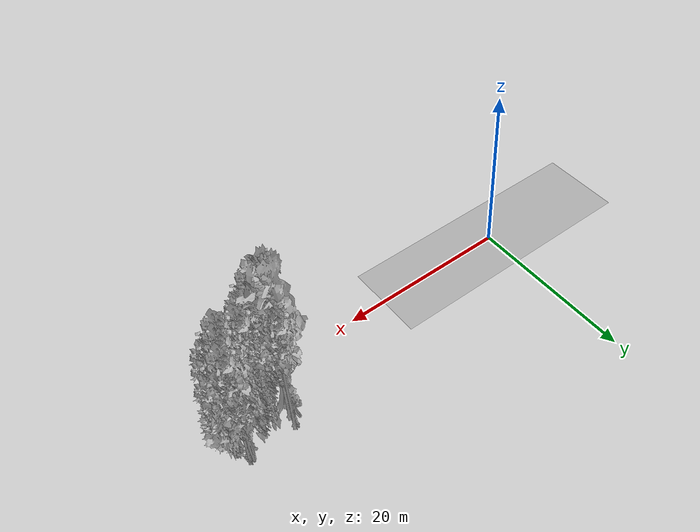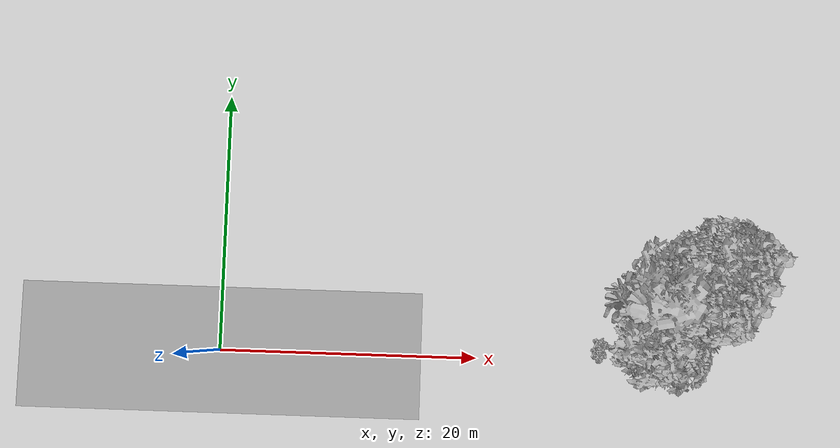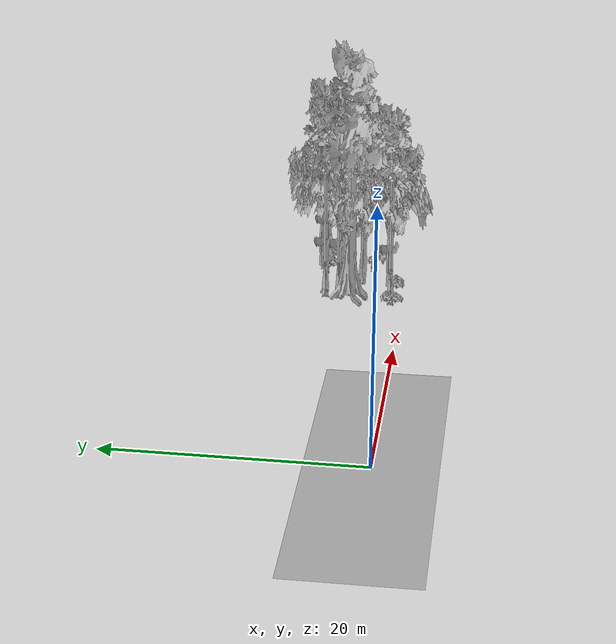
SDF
<sdf version="1.7">
 <world name="default">
  <model name="ground_plane">
   <static>1</static>
   <link name="link">
    <collision name="collision">
     <geometry><plane><normal>0 0 1</normal><size>100 100</size></plane></geometry>
     <surface><contact><ode><min_depth>0.01</min_depth><max_vel>0</max_vel></ode></contact></surface>
    </collision>
    <visual name="grass">
     <cast_shadows>0</cast_shadows>
     <geometry>
      <mesh>
       <scale>0.5814285714285714 0.18142857142857144 0.1</scale>
       <uri>file://grass_plane/meshes/grass_plane.dae</uri>
      </mesh>
     </geometry>
    </visual>
   </link>
  </model>
  <model name="Tree 175">
   <static>1</static>
   <pose>31.618759732992004 5.647801892518292 0 1.57079 -0 0</pose>
   <link name="link">
    <collision name="collision">
     <geometry><mesh><scale>3.5 5 3.5</scale><uri>model://tree_9/meshes/tree_9.obj</uri></mesh></geometry>
    </collision>
    <visual name="visual">
     <geometry><mesh><scale>3.5 5 3.5</scale><uri>model://tree_9/meshes/tree_9.obj</uri></mesh></geometry>
    </visual>
   </link>
  </model>
  <model name="Tree 182">
   <static>1</static>
   <pose>33.18306166454015 3.6739249281176996 0 1.57079 -0 0</pose>
   <link name="link">
    <collision name="collision">
     <geometry><mesh><scale>3.5 5 3.5</scale><uri>model://tree_2/meshes/tree_2.obj</uri></mesh></geometry>
    </collision>
    <visual name="visual">
     <geometry><mesh><scale>3.5 5 3.5</scale><uri>model://tree_2/meshes/tree_2.obj</uri></mesh></geometry>
    </visual>
   </link>
  </model>
  <model name="Tree 190">
   <static>1</static>
   <pose>31.79668107612474 6.836369290769582 0 1.57079 -0 0</pose>
   <link name="link">
    <collision name="collision">
     <geometry><mesh><scale>3.5 5 3.5</scale><uri>model://tree_9/meshes/tree_9.obj</uri></mesh></geometry>
    </collision>
    <visual name="visual">
     <geometry><mesh><scale>3.5 5 3.5</scale><uri>model://tree_9/meshes/tree_9.obj</uri></mesh></geometry>
    </visual>
   </link>
  </model>
  <model name="Tree 227">
   <static>1</static>
   <pose>37.17132665054946 7.369085561247843 0 1.57079 -0 0</pose>
   <link name="link">
    <collision name="collision">
     <geometry><mesh><scale>3.5 5 3.5</scale><uri>model://tree_9/meshes/tree_9.obj</uri></mesh></geometry>
    </collision>
    <visual name="visual">
     <geometry><mesh><scale>3.5 5 3.5</scale><uri>model://tree_9/meshes/tree_9.obj</uri></mesh></geometry>
    </visual>
   </link>
  </model>
  <model name="Tree 228">
   <static>1</static>
   <pose>34.125454326950404 4.593254265939439 0 1.57079 -0 0</pose>
   <link name="link">
    <collision name="collision">
     <geometry><mesh><scale>3.5 5 3.5</scale><uri>model://tree_9/meshes/tree_9.obj</uri></mesh></geometry>
    </collision>
    <visual name="visual">
     <geometry><mesh><scale>3.5 5 3.5</scale><uri>model://tree_9/meshes/tree_9.obj</uri></mesh></geometry>
    </visual>
   </link>
  </model>
  <model name="Tree 259">
   <static>1</static>
   <pose>36.870716037272786 7.704359881895467 0 1.57079 -0 0</pose>
   <link name="link">
    <collision name="collision">
     <geometry><mesh><scale>3.5 5 3.5</scale><uri>model://tree_2/meshes/tree_2.obj</uri></mesh></geometry>
    </collision>
    <visual name="visual">
     <geometry><mesh><scale>3.5 5 3.5</scale><uri>model://tree_2/meshes/tree_2.obj</uri></mesh></geometry>
    </visual>
   </link>
  </model>
  <model name="Tree 261">
   <static>1</static>
   <pose>36.30689821481485 5.895072833381711 0 1.57079 -0 0</pose>
   <link name="link">
    <collision name="collision">
     <geometry><mesh><scale>3.5 5 3.5</scale><uri>model://tree_2/meshes/tree_2.obj</uri></mesh></geometry>
    </collision>
    <visual name="visual">
     <geometry><mesh><scale>3.5 5 3.5</scale><uri>model://tree_2/meshes/tree_2.obj</uri></mesh></geometry>
    </visual>
   </link>
  </model>
  <model name="Tree 292">
   <static>1</static>
   <pose>32.9292463511638 1.4296594273074668 0 1.57079 -0 0</pose>
   <link name="link">
    <collision name="collision">
     <geometry><mesh><scale>3.5 5 3.5</scale><uri>model://tree_2/meshes/tree_2.obj</uri></mesh></geometry>
    </collision>
    <visual name="visual">
     <geometry><mesh><scale>3.5 5 3.5</scale><uri>model://tree_2/meshes/tree_2.obj</uri></mesh></geometry>
    </visual>
   </link>
  </model>
  <model name="Tree 302">
   <static>1</static>
   <pose>36.382396890101646 5.397018256989149 0 1.57079 -0 0</pose>
   <link name="link">
    <collision name="collision">
     <geometry><mesh><scale>3.5 5 3.5</scale><uri>model://tree_9/meshes/tree_9.obj</uri></mesh></geometry>
    </collision>
    <visual name="visual">
     <geometry><mesh><scale>3.5 5 3.5</scale><uri>model://tree_9/meshes/tree_9.obj</uri></mesh></geometry>
    </visual>
   </link>
  </model>
  <model name="Tree 325">
   <static>1</static>
   <pose>36.66113186781493 7.095616586874627 0 1.57079 -0 0</pose>
   <link name="link">
    <collision name="collision">
     <geometry><mesh><scale>3.5 5 3.5</scale><uri>model://tree_2/meshes/tree_2.obj</uri></mesh></geometry>
    </collision>
    <visual name="visual">
     <geometry><mesh><scale>3.5 5 3.5</scale><uri>model://tree_2/meshes/tree_2.obj</uri></mesh></geometry>
    </visual>
   </link>
  </model>
  <model name="Tree 378">
   <static>1</static>
   <pose>30.8225458413021 1.1322860216537052 0 1.57079 -0 0</pose>
   <link name="link">
    <collision name="collision">
     <geometry><mesh><scale>3.5 5 3.5</scale><uri>model://tree_9/meshes/tree_9.obj</uri></mesh></geometry>
    </collision>
    <visual name="visual">
     <geometry><mesh><scale>3.5 5 3.5</scale><uri>model://tree_9/meshes/tree_9.obj</uri></mesh></geometry>
    </visual>
   </link>
  </model>
  <model name="Tree 386">
   <static>1</static>
   <pose>35.7301739585959 3.983721117975538 0 1.57079 -0 0</pose>
   <link name="link">
    <collision name="collision">
     <geometry><mesh><scale>3.5 5 3.5</scale><uri>model://tree_9/meshes/tree_9.obj</uri></mesh></geometry>
    </collision>
    <visual name="visual">
     <geometry><mesh><scale>3.5 5 3.5</scale><uri>model://tree_9/meshes/tree_9.obj</uri></mesh></geometry>
    </visual>
   </link>
  </model>
  <model name="Tree 405">
   <static>1</static>
   <pose>31.06436439699921 4.690933077250477 0 1.57079 -0 0</pose>
   <link name="link">
    <collision name="collision">
     <geometry><mesh><scale>3.5 5 3.5</scale><uri>model://tree_4/meshes/tree_4.obj</uri></mesh></geometry>
    </collision>
    <visual name="visual">
     <geometry><mesh><scale>3.5 5 3.5</scale><uri>model://tree_4/meshes/tree_4.obj</uri></mesh></geometry>
    </visual>
   </link>
  </model>
  <model name="Bush 33">
   <static>1</static>
   <pose>37.10644346341742 7.117557331291735 0 1.57079 -0 0</pose>
   <link name="link">
    <collision name="collision">
     <geometry><mesh><scale>2 2 2</scale><uri>model://bush_2/meshes/bush_2.obj</uri></mesh></geometry>
     <surface><contact><collide_without_contact>false</collide_without_contact></contact></surface>
    </collision>
    <visual name="visual">
     <geometry><mesh><scale>2 2 2</scale><uri>model://bush_2/meshes/bush_2.obj</uri></mesh></geometry>
    </visual>
   </link>
  </model>
  <model name="Bush 37">
   <static>1</static>
   <pose>33.3657108262001 0.8104425202608354 0 1.57079 -0 0</pose>
   <link name="link">
    <collision name="collision">
     <geometry><mesh><scale>2 2 2</scale><uri>model://bush_3/meshes/bush_3.obj</uri></mesh></geometry>
     <surface><contact><collide_without_contact>false</collide_without_contact></contact></surface>
    </collision>
    <visual name="visual">
     <geometry><mesh><scale>2 2 2</scale><uri>model://bush_3/meshes/bush_3.obj</uri></mesh></geometry>
    </visual>
   </link>
  </model>
  <model name="Bush 225">
   <static>1</static>
   <pose>32.64985940535165 0.7450199145901149 0 1.57079 -0 0</pose>
   <link name="link">
    <collision name="collision">
     <geometry><mesh><scale>2 2 2</scale><uri>model://bush_3/meshes/bush_3.obj</uri></mesh></geometry>
     <surface><contact><collide_without_contact>false</collide_without_contact></contact></surface>
    </collision>
    <visual name="visual">
     <geometry><mesh><scale>2 2 2</scale><uri>model://bush_3/meshes/bush_3.obj</uri></mesh></geometry>
    </visual>
   </link>
  </model>
  <model name="Bush 230">
   <static>1</static>
   <pose>36.810255019717886 6.664993600058281 0 1.57079 -0 0</pose>
   <link name="link">
    <collision name="collision">
     <geometry><mesh><scale>2 2 2</scale><uri>model://bush_3/meshes/bush_3.obj</uri></mesh></geometry>
     <surface><contact><collide_without_contact>false</collide_without_contact></contact></surface>
    </collision>
    <visual name="visual">
     <geometry><mesh><scale>2 2 2</scale><uri>model://bush_3/meshes/bush_3.obj</uri></mesh></geometry>
    </visual>
   </link>
  </model>
  <model name="Bush 251">
   <static>1</static>
   <pose>29.560292925711394 0.6060687693740512 0 1.57079 -0 0</pose>
   <link name="link">
    <collision name="collision">
     <geometry><mesh><scale>2 2 2</scale><uri>model://bush_3/meshes/bush_3.obj</uri></mesh></geometry>
     <surface><contact><collide_without_contact>false</collide_without_contact></contact></surface>
    </collision>
    <visual name="visual">
     <geometry><mesh><scale>2 2 2</scale><uri>model://bush_3/meshes/bush_3.obj</uri></mesh></geometry>
    </visual>
   </link>
  </model>
  <model name="Bush 300">
   <static>1</static>
   <pose>37.90684386969447 6.790513905103921 0 1.57079 -0 0</pose>
   <link name="link">
    <collision name="collision">
     <geometry><mesh><scale>2 2 2</scale><uri>model://bush_5/meshes/bush_5.obj</uri></mesh></geometry>
     <surface><contact><collide_without_contact>false</collide_without_contact></contact></surface>
    </collision>
    <visual name="visual">
     <geometry><mesh><scale>2 2 2</scale><uri>model://bush_5/meshes/bush_5.obj</uri></mesh></geometry>
    </visual>
   </link>
  </model>
  <model name="Bush 305">
   <static>1</static>
   <pose>29.726508179155715 1.3369857769152063 0 1.57079 -0 0</pose>
   <link name="link">
    <collision name="collision">
     <geometry><mesh><scale>2 2 2</scale><uri>model://bush_3/meshes/bush_3.obj</uri></mesh></geometry>
     <surface><contact><collide_without_contact>false</collide_without_contact></contact></surface>
    </collision>
    <visual name="visual">
     <geometry><mesh><scale>2 2 2</scale><uri>model://bush_3/meshes/bush_3.obj</uri></mesh></geometry>
    </visual>
   </link>
  </model>
  <model name="Bush 309">
   <static>1</static>
   <pose>37.98829173858782 2.330339257689822 0 1.57079 -0 0</pose>
   <link name="link">
    <collision name="collision">
     <geometry><mesh><scale>2 2 2</scale><uri>model://bush_1/meshes/bush_1.obj</uri></mesh></geometry>
     <surface><contact><collide_without_contact>false</collide_without_contact></contact></surface>
    </collision>
    <visual name="visual">
     <geometry><mesh><scale>2 2 2</scale><uri>model://bush_1/meshes/bush_1.obj</uri></mesh></geometry>
    </visual>
   </link>
  </model>
  <model name="Bush 318">
   <static>1</static>
   <pose>36.093658493213596 3.206402075287542 0 1.57079 -0 0</pose>
   <link name="link">
    <collision name="collision">
     <geometry><mesh><scale>2 2 2</scale><uri>model://bush_5/meshes/bush_5.obj</uri></mesh></geometry>
     <surface><contact><collide_without_contact>false</collide_without_contact></contact></surface>
    </collision>
    <visual name="visual">
     <geometry><mesh><scale>2 2 2</scale><uri>model://bush_5/meshes/bush_5.obj</uri></mesh></geometry>
    </visual>
   </link>
  </model>
 </world>
</sdf>
